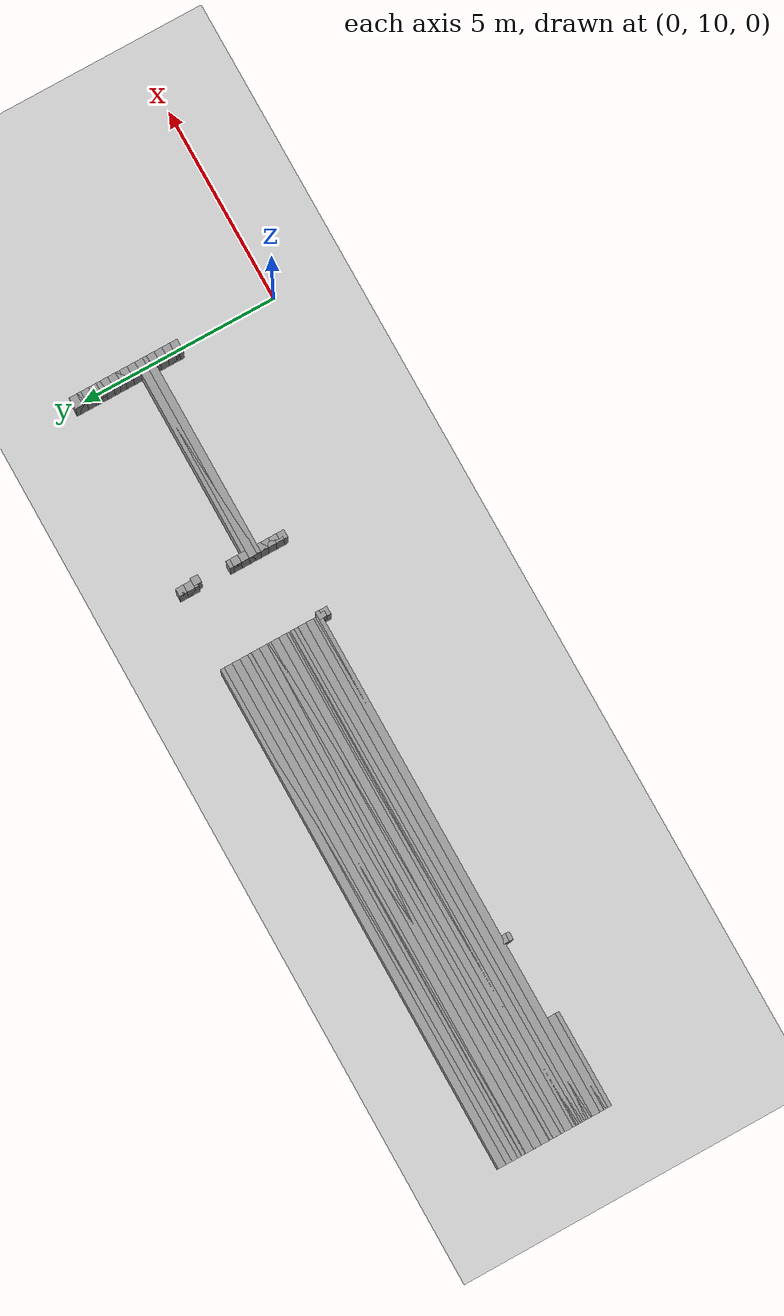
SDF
<sdf version="1.6">
 <world name="GridMap">
  <include><uri>model://sun</uri></include>
  <include><uri>model://ground_plane</uri></include>
  <model name="GridMap">
   <link name="Wall_(187.0,125.0)">
    <collision name="Wall_(187.0,125.0)_Collision">
     <geometry><box><size>2.4000000000000004 0.2 1.0</size></box></geometry>
     <pose>-18.7 12.5 0.5 0 -0 0</pose>
    </collision>
    <visual name="Wall_(187.0,125.0)_Visual">
     <geometry><box><size>2.4000000000000004 0.2 1.0</size></box></geometry>
     <pose>-18.7 12.5 0.5 0 -0 0</pose>
     <material>
      <script><uri>file://media/materials/scripts/gazebo.material</uri><name>Gazebo/Grey</name></script>
      <ambient>1 1 1 1</ambient>
     </material>
     <meta><layer>0</layer></meta>
    </visual>
    <pose>0 0 0.5 0 -0 0</pose>
   </link>
   <link name="Wall_(1.5,126.0)">
    <collision name="Wall_(1.5,126.0)_Collision">
     <geometry><box><size>0.30000000000000004 0.2 1.0</size></box></geometry>
     <pose>-0.15000000000000002 12.600000000000001 0.5 0 -0 0</pose>
    </collision>
    <visual name="Wall_(1.5,126.0)_Visual">
     <geometry><box><size>0.30000000000000004 0.2 1.0</size></box></geometry>
     <pose>-0.15000000000000002 12.600000000000001 0.5 0 -0 0</pose>
     <material>
      <script><uri>file://media/materials/scripts/gazebo.material</uri><name>Gazebo/Grey</name></script>
      <ambient>1 1 1 1</ambient>
     </material>
     <meta><layer>0</layer></meta>
    </visual>
    <pose>0 0 0.5 0 -0 0</pose>
   </link>
   <link name="Wall_(51.0,126.0)">
    <collision name="Wall_(51.0,126.0)_Collision">
     <geometry><box><size>0.2 0.2 1.0</size></box></geometry>
     <pose>-5.1000000000000005 12.600000000000001 0.5 0 -0 0</pose>
    </collision>
    <visual name="Wall_(51.0,126.0)_Visual">
     <geometry><box><size>0.2 0.2 1.0</size></box></geometry>
     <pose>-5.1000000000000005 12.600000000000001 0.5 0 -0 0</pose>
     <material>
      <script><uri>file://media/materials/scripts/gazebo.material</uri><name>Gazebo/Grey</name></script>
      <ambient>1 1 1 1</ambient>
     </material>
     <meta><layer>0</layer></meta>
    </visual>
    <pose>0 0 0.5 0 -0 0</pose>
   </link>
   <link name="Wall_(71.0,126.0)">
    <collision name="Wall_(71.0,126.0)_Collision">
     <geometry><box><size>0.2 0.2 1.0</size></box></geometry>
     <pose>-7.1000000000000005 12.600000000000001 0.5 0 -0 0</pose>
    </collision>
    <visual name="Wall_(71.0,126.0)_Visual">
     <geometry><box><size>0.2 0.2 1.0</size></box></geometry>
     <pose>-7.1000000000000005 12.600000000000001 0.5 0 -0 0</pose>
     <material>
      <script><uri>file://media/materials/scripts/gazebo.material</uri><name>Gazebo/Grey</name></script>
      <ambient>1 1 1 1</ambient>
     </material>
     <meta><layer>0</layer></meta>
    </visual>
    <pose>0 0 0.5 0 -0 0</pose>
   </link>
   <link name="Wall_(155.0,126.0)">
    <collision name="Wall_(155.0,126.0)_Collision">
     <geometry><box><size>0.2 0.2 1.0</size></box></geometry>
     <pose>-15.5 12.600000000000001 0.5 0 -0 0</pose>
    </collision>
    <visual name="Wall_(155.0,126.0)_Visual">
     <geometry><box><size>0.2 0.2 1.0</size></box></geometry>
     <pose>-15.5 12.600000000000001 0.5 0 -0 0</pose>
     <material>
      <script><uri>file://media/materials/scripts/gazebo.material</uri><name>Gazebo/Grey</name></script>
      <ambient>1 1 1 1</ambient>
     </material>
     <meta><layer>0</layer></meta>
    </visual>
    <pose>0 0 0.5 0 -0 0</pose>
   </link>
   <link name="Wall_(187.0,126.0)">
    <collision name="Wall_(187.0,126.0)_Collision">
     <geometry><box><size>2.4000000000000004 0.2 1.0</size></box></geometry>
     <pose>-18.7 12.600000000000001 0.5 0 -0 0</pose>
    </collision>
    <visual name="Wall_(187.0,126.0)_Visual">
     <geometry><box><size>2.4000000000000004 0.2 1.0</size></box></geometry>
     <pose>-18.7 12.600000000000001 0.5 0 -0 0</pose>
     <material>
      <script><uri>file://media/materials/scripts/gazebo.material</uri><name>Gazebo/Grey</name></script>
      <ambient>1 1 1 1</ambient>
     </material>
     <meta><layer>0</layer></meta>
    </visual>
    <pose>0 0 0.5 0 -0 0</pose>
   </link>
   <link name="Wall_(1.5,127.0)">
    <collision name="Wall_(1.5,127.0)_Collision">
     <geometry><box><size>0.30000000000000004 0.2 1.0</size></box></geometry>
     <pose>-0.15000000000000002 12.700000000000001 0.5 0 -0 0</pose>
    </collision>
    <visual name="Wall_(1.5,127.0)_Visual">
     <geometry><box><size>0.30000000000000004 0.2 1.0</size></box></geometry>
     <pose>-0.15000000000000002 12.700000000000001 0.5 0 -0 0</pose>
     <material>
      <script><uri>file://media/materials/scripts/gazebo.material</uri><name>Gazebo/Grey</name></script>
      <ambient>1 1 1 1</ambient>
     </material>
     <meta><layer>0</layer></meta>
    </visual>
    <pose>0 0 0.5 0 -0 0</pose>
   </link>
   <link name="Wall_(51.0,127.0)">
    <collision name="Wall_(51.0,127.0)_Collision">
     <geometry><box><size>0.2 0.2 1.0</size></box></geometry>
     <pose>-5.1000000000000005 12.700000000000001 0.5 0 -0 0</pose>
    </collision>
    <visual name="Wall_(51.0,127.0)_Visual">
     <geometry><box><size>0.2 0.2 1.0</size></box></geometry>
     <pose>-5.1000000000000005 12.700000000000001 0.5 0 -0 0</pose>
     <material>
      <script><uri>file://media/materials/scripts/gazebo.material</uri><name>Gazebo/Grey</name></script>
      <ambient>1 1 1 1</ambient>
     </material>
     <meta><layer>0</layer></meta>
    </visual>
    <pose>0 0 0.5 0 -0 0</pose>
   </link>
   <link name="Wall_(71.0,127.0)">
    <collision name="Wall_(71.0,127.0)_Collision">
     <geometry><box><size>0.2 0.2 1.0</size></box></geometry>
     <pose>-7.1000000000000005 12.700000000000001 0.5 0 -0 0</pose>
    </collision>
    <visual name="Wall_(71.0,127.0)_Visual">
     <geometry><box><size>0.2 0.2 1.0</size></box></geometry>
     <pose>-7.1000000000000005 12.700000000000001 0.5 0 -0 0</pose>
     <material>
      <script><uri>file://media/materials/scripts/gazebo.material</uri><name>Gazebo/Grey</name></script>
      <ambient>1 1 1 1</ambient>
     </material>
     <meta><layer>0</layer></meta>
    </visual>
    <pose>0 0 0.5 0 -0 0</pose>
   </link>
   <link name="Wall_(155.0,127.0)">
    <collision name="Wall_(155.0,127.0)_Collision">
     <geometry><box><size>0.2 0.2 1.0</size></box></geometry>
     <pose>-15.5 12.700000000000001 0.5 0 -0 0</pose>
    </collision>
    <visual name="Wall_(155.0,127.0)_Visual">
     <geometry><box><size>0.2 0.2 1.0</size></box></geometry>
     <pose>-15.5 12.700000000000001 0.5 0 -0 0</pose>
     <material>
      <script><uri>file://media/materials/scripts/gazebo.material</uri><name>Gazebo/Grey</name></script>
      <ambient>1 1 1 1</ambient>
     </material>
     <meta><layer>0</layer></meta>
    </visual>
    <pose>0 0 0.5 0 -0 0</pose>
   </link>
   <link name="Wall_(187.0,127.0)">
    <collision name="Wall_(187.0,127.0)_Collision">
     <geometry><box><size>2.4000000000000004 0.2 1.0</size></box></geometry>
     <pose>-18.7 12.700000000000001 0.5 0 -0 0</pose>
    </collision>
    <visual name="Wall_(187.0,127.0)_Visual">
     <geometry><box><size>2.4000000000000004 0.2 1.0</size></box></geometry>
     <pose>-18.7 12.700000000000001 0.5 0 -0 0</pose>
     <material>
      <script><uri>file://media/materials/scripts/gazebo.material</uri><name>Gazebo/Grey</name></script>
      <ambient>1 1 1 1</ambient>
     </material>
     <meta><layer>0</layer></meta>
    </visual>
    <pose>0 0 0.5 0 -0 0</pose>
   </link>
   <link name="Wall_(1.5,128.0)">
    <collision name="Wall_(1.5,128.0)_Collision">
     <geometry><box><size>0.30000000000000004 0.2 1.0</size></box></geometry>
     <pose>-0.15000000000000002 12.8 0.5 0 -0 0</pose>
    </collision>
    <visual name="Wall_(1.5,128.0)_Visual">
     <geometry><box><size>0.30000000000000004 0.2 1.0</size></box></geometry>
     <pose>-0.15000000000000002 12.8 0.5 0 -0 0</pose>
     <material>
      <script><uri>file://media/materials/scripts/gazebo.material</uri><name>Gazebo/Grey</name></script>
      <ambient>1 1 1 1</ambient>
     </material>
     <meta><layer>0</layer></meta>
    </visual>
    <pose>0 0 0.5 0 -0 0</pose>
   </link>
   <link name="Wall_(51.0,128.0)">
    <collision name="Wall_(51.0,128.0)_Collision">
     <geometry><box><size>0.2 0.2 1.0</size></box></geometry>
     <pose>-5.1000000000000005 12.8 0.5 0 -0 0</pose>
    </collision>
    <visual name="Wall_(51.0,128.0)_Visual">
     <geometry><box><size>0.2 0.2 1.0</size></box></geometry>
     <pose>-5.1000000000000005 12.8 0.5 0 -0 0</pose>
     <material>
      <script><uri>file://media/materials/scripts/gazebo.material</uri><name>Gazebo/Grey</name></script>
      <ambient>1 1 1 1</ambient>
     </material>
     <meta><layer>0</layer></meta>
    </visual>
    <pose>0 0 0.5 0 -0 0</pose>
   </link>
   <link name="Wall_(135.0,128.0)">
    <collision name="Wall_(135.0,128.0)_Collision">
     <geometry><box><size>12.8 0.2 1.0</size></box></geometry>
     <pose>-13.5 12.8 0.5 0 -0 0</pose>
    </collision>
    <visual name="Wall_(135.0,128.0)_Visual">
     <geometry><box><size>12.8 0.2 1.0</size></box></geometry>
     <pose>-13.5 12.8 0.5 0 -0 0</pose>
     <material>
      <script><uri>file://media/materials/scripts/gazebo.material</uri><name>Gazebo/Grey</name></script>
      <ambient>1 1 1 1</ambient>
     </material>
     <meta><layer>0</layer></meta>
    </visual>
    <pose>0 0 0.5 0 -0 0</pose>
   </link>
   <link name="Wall_(1.5,129.0)">
    <collision name="Wall_(1.5,129.0)_Collision">
     <geometry><box><size>0.30000000000000004 0.2 1.0</size></box></geometry>
     <pose>-0.15000000000000002 12.9 0.5 0 -0 0</pose>
    </collision>
    <visual name="Wall_(1.5,129.0)_Visual">
     <geometry><box><size>0.30000000000000004 0.2 1.0</size></box></geometry>
     <pose>-0.15000000000000002 12.9 0.5 0 -0 0</pose>
     <material>
      <script><uri>file://media/materials/scripts/gazebo.material</uri><name>Gazebo/Grey</name></script>
      <ambient>1 1 1 1</ambient>
     </material>
     <meta><layer>0</layer></meta>
    </visual>
    <pose>0 0 0.5 0 -0 0</pose>
   </link>
   <link name="Wall_(51.0,129.0)">
    <collision name="Wall_(51.0,129.0)_Collision">
     <geometry><box><size>0.2 0.2 1.0</size></box></geometry>
     <pose>-5.1000000000000005 12.9 0.5 0 -0 0</pose>
    </collision>
    <visual name="Wall_(51.0,129.0)_Visual">
     <geometry><box><size>0.2 0.2 1.0</size></box></geometry>
     <pose>-5.1000000000000005 12.9 0.5 0 -0 0</pose>
     <material>
      <script><uri>file://media/materials/scripts/gazebo.material</uri><name>Gazebo/Grey</name></script>
      <ambient>1 1 1 1</ambient>
     </material>
     <meta><layer>0</layer></meta>
    </visual>
    <pose>0 0 0.5 0 -0 0</pose>
   </link>
   <link name="Wall_(135.0,129.0)">
    <collision name="Wall_(135.0,129.0)_Collision">
     <geometry><box><size>12.8 0.2 1.0</size></box></geometry>
     <pose>-13.5 12.9 0.5 0 -0 0</pose>
    </collision>
    <visual name="Wall_(135.0,129.0)_Visual">
     <geometry><box><size>12.8 0.2 1.0</size></box></geometry>
     <pose>-13.5 12.9 0.5 0 -0 0</pose>
     <material>
      <script><uri>file://media/materials/scripts/gazebo.material</uri><name>Gazebo/Grey</name></script>
      <ambient>1 1 1 1</ambient>
     </material>
     <meta><layer>0</layer></meta>
    </visual>
    <pose>0 0 0.5 0 -0 0</pose>
   </link>
   <link name="Wall_(1.5,130.0)">
    <collision name="Wall_(1.5,130.0)_Collision">
     <geometry><box><size>0.30000000000000004 0.2 1.0</size></box></geometry>
     <pose>-0.15000000000000002 13.0 0.5 0 -0 0</pose>
    </collision>
    <visual name="Wall_(1.5,130.0)_Visual">
     <geometry><box><size>0.30000000000000004 0.2 1.0</size></box></geometry>
     <pose>-0.15000000000000002 13.0 0.5 0 -0 0</pose>
     <material>
      <script><uri>file://media/materials/scripts/gazebo.material</uri><name>Gazebo/Grey</name></script>
      <ambient>1 1 1 1</ambient>
     </material>
     <meta><layer>0</layer></meta>
    </visual>
    <pose>0 0 0.5 0 -0 0</pose>
   </link>
   <link name="Wall_(51.0,130.0)">
    <collision name="Wall_(51.0,130.0)_Collision">
     <geometry><box><size>0.2 0.2 1.0</size></box></geometry>
     <pose>-5.1000000000000005 13.0 0.5 0 -0 0</pose>
    </collision>
    <visual name="Wall_(51.0,130.0)_Visual">
     <geometry><box><size>0.2 0.2 1.0</size></box></geometry>
     <pose>-5.1000000000000005 13.0 0.5 0 -0 0</pose>
     <material>
      <script><uri>file://media/materials/scripts/gazebo.material</uri><name>Gazebo/Grey</name></script>
      <ambient>1 1 1 1</ambient>
     </material>
     <meta><layer>0</layer></meta>
    </visual>
    <pose>0 0 0.5 0 -0 0</pose>
   </link>
   <link name="Wall_(135.0,130.0)">
    <collision name="Wall_(135.0,130.0)_Collision">
     <geometry><box><size>12.8 0.2 1.0</size></box></geometry>
     <pose>-13.5 13.0 0.5 0 -0 0</pose>
    </collision>
    <visual name="Wall_(135.0,130.0)_Visual">
     <geometry><box><size>12.8 0.2 1.0</size></box></geometry>
     <pose>-13.5 13.0 0.5 0 -0 0</pose>
     <material>
      <script><uri>file://media/materials/scripts/gazebo.material</uri><name>Gazebo/Grey</name></script>
      <ambient>1 1 1 1</ambient>
     </material>
     <meta><layer>0</layer></meta>
    </visual>
    <pose>0 0 0.5 0 -0 0</pose>
   </link>
   <link name="Wall_(1.5,131.0)">
    <collision name="Wall_(1.5,131.0)_Collision">
     <geometry><box><size>0.30000000000000004 0.2 1.0</size></box></geometry>
     <pose>-0.15000000000000002 13.100000000000001 0.5 0 -0 0</pose>
    </collision>
    <visual name="Wall_(1.5,131.0)_Visual">
     <geometry><box><size>0.30000000000000004 0.2 1.0</size></box></geometry>
     <pose>-0.15000000000000002 13.100000000000001 0.5 0 -0 0</pose>
     <material>
      <script><uri>file://media/materials/scripts/gazebo.material</uri><name>Gazebo/Grey</name></script>
      <ambient>1 1 1 1</ambient>
     </material>
     <meta><layer>0</layer></meta>
    </visual>
    <pose>0 0 0.5 0 -0 0</pose>
   </link>
   <link name="Wall_(51.0,131.0)">
    <collision name="Wall_(51.0,131.0)_Collision">
     <geometry><box><size>0.2 0.2 1.0</size></box></geometry>
     <pose>-5.1000000000000005 13.100000000000001 0.5 0 -0 0</pose>
    </collision>
    <visual name="Wall_(51.0,131.0)_Visual">
     <geometry><box><size>0.2 0.2 1.0</size></box></geometry>
     <pose>-5.1000000000000005 13.100000000000001 0.5 0 -0 0</pose>
     <material>
      <script><uri>file://media/materials/scripts/gazebo.material</uri><name>Gazebo/Grey</name></script>
      <ambient>1 1 1 1</ambient>
     </material>
     <meta><layer>0</layer></meta>
    </visual>
    <pose>0 0 0.5 0 -0 0</pose>
   </link>
   <link name="Wall_(135.0,131.0)">
    <collision name="Wall_(135.0,131.0)_Collision">
     <geometry><box><size>12.8 0.2 1.0</size></box></geometry>
     <pose>-13.5 13.100000000000001 0.5 0 -0 0</pose>
    </collision>
    <visual name="Wall_(135.0,131.0)_Visual">
     <geometry><box><size>12.8 0.2 1.0</size></box></geometry>
     <pose>-13.5 13.100000000000001 0.5 0 -0 0</pose>
     <material>
      <script><uri>file://media/materials/scripts/gazebo.material</uri><name>Gazebo/Grey</name></script>
      <ambient>1 1 1 1</ambient>
     </material>
     <meta><layer>0</layer></meta>
    </visual>
    <pose>0 0 0.5 0 -0 0</pose>
   </link>
   <link name="Wall_(1.5,132.0)">
    <collision name="Wall_(1.5,132.0)_Collision">
     <geometry><box><size>0.30000000000000004 0.2 1.0</size></box></geometry>
     <pose>-0.15000000000000002 13.200000000000001 0.5 0 -0 0</pose>
    </collision>
    <visual name="Wall_(1.5,132.0)_Visual">
     <geometry><box><size>0.30000000000000004 0.2 1.0</size></box></geometry>
     <pose>-0.15000000000000002 13.200000000000001 0.5 0 -0 0</pose>
     <material>
      <script><uri>file://media/materials/scripts/gazebo.material</uri><name>Gazebo/Grey</name></script>
      <ambient>1 1 1 1</ambient>
     </material>
     <meta><layer>0</layer></meta>
    </visual>
    <pose>0 0 0.5 0 -0 0</pose>
   </link>
   <link name="Wall_(51.0,132.0)">
    <collision name="Wall_(51.0,132.0)_Collision">
     <geometry><box><size>0.2 0.2 1.0</size></box></geometry>
     <pose>-5.1000000000000005 13.200000000000001 0.5 0 -0 0</pose>
    </collision>
    <visual name="Wall_(51.0,132.0)_Visual">
     <geometry><box><size>0.2 0.2 1.0</size></box></geometry>
     <pose>-5.1000000000000005 13.200000000000001 0.5 0 -0 0</pose>
     <material>
      <script><uri>file://media/materials/scripts/gazebo.material</uri><name>Gazebo/Grey</name></script>
      <ambient>1 1 1 1</ambient>
     </material>
     <meta><layer>0</layer></meta>
    </visual>
    <pose>0 0 0.5 0 -0 0</pose>
   </link>
   <link name="Wall_(135.0,132.0)">
    <collision name="Wall_(135.0,132.0)_Collision">
     <geometry><box><size>12.8 0.2 1.0</size></box></geometry>
     <pose>-13.5 13.200000000000001 0.5 0 -0 0</pose>
    </collision>
    <visual name="Wall_(135.0,132.0)_Visual">
     <geometry><box><size>12.8 0.2 1.0</size></box></geometry>
     <pose>-13.5 13.200000000000001 0.5 0 -0 0</pose>
     <material>
      <script><uri>file://media/materials/scripts/gazebo.material</uri><name>Gazebo/Grey</name></script>
      <ambient>1 1 1 1</ambient>
     </material>
     <meta><layer>0</layer></meta>
    </visual>
    <pose>0 0 0.5 0 -0 0</pose>
   </link>
   <link name="Wall_(26.0,133.0)">
    <collision name="Wall_(26.0,133.0)_Collision">
     <geometry><box><size>5.2 0.2 1.0</size></box></geometry>
     <pose>-2.6 13.3 0.5 0 -0 0</pose>
    </collision>
    <visual name="Wall_(26.0,133.0)_Visual">
     <geometry><box><size>5.2 0.2 1.0</size></box></geometry>
     <pose>-2.6 13.3 0.5 0 -0 0</pose>
     <material>
      <script><uri>file://media/materials/scripts/gazebo.material</uri><name>Gazebo/Grey</name></script>
      <ambient>1 1 1 1</ambient>
     </material>
     <meta><layer>0</layer></meta>
    </visual>
    <pose>0 0 0.5 0 -0 0</pose>
   </link>
   <link name="Wall_(135.0,133.0)">
    <collision name="Wall_(135.0,133.0)_Collision">
     <geometry><box><size>12.8 0.2 1.0</size></box></geometry>
     <pose>-13.5 13.3 0.5 0 -0 0</pose>
    </collision>
    <visual name="Wall_(135.0,133.0)_Visual">
     <geometry><box><size>12.8 0.2 1.0</size></box></geometry>
     <pose>-13.5 13.3 0.5 0 -0 0</pose>
     <material>
      <script><uri>file://media/materials/scripts/gazebo.material</uri><name>Gazebo/Grey</name></script>
      <ambient>1 1 1 1</ambient>
     </material>
     <meta><layer>0</layer></meta>
    </visual>
    <pose>0 0 0.5 0 -0 0</pose>
   </link>
   <link name="Wall_(26.0,134.0)">
    <collision name="Wall_(26.0,134.0)_Collision">
     <geometry><box><size>5.2 0.2 1.0</size></box></geometry>
     <pose>-2.6 13.4 0.5 0 -0 0</pose>
    </collision>
    <visual name="Wall_(26.0,134.0)_Visual">
     <geometry><box><size>5.2 0.2 1.0</size></box></geometry>
     <pose>-2.6 13.4 0.5 0 -0 0</pose>
     <material>
      <script><uri>file://media/materials/scripts/gazebo.material</uri><name>Gazebo/Grey</name></script>
      <ambient>1 1 1 1</ambient>
     </material>
     <meta><layer>0</layer></meta>
    </visual>
    <pose>0 0 0.5 0 -0 0</pose>
   </link>
   <link name="Wall_(135.0,134.0)">
    <collision name="Wall_(135.0,134.0)_Collision">
     <geometry><box><size>12.8 0.2 1.0</size></box></geometry>
     <pose>-13.5 13.4 0.5 0 -0 0</pose>
    </collision>
    <visual name="Wall_(135.0,134.0)_Visual">
     <geometry><box><size>12.8 0.2 1.0</size></box></geometry>
     <pose>-13.5 13.4 0.5 0 -0 0</pose>
     <material>
      <script><uri>file://media/materials/scripts/gazebo.material</uri><name>Gazebo/Grey</name></script>
      <ambient>1 1 1 1</ambient>
     </material>
     <meta><layer>0</layer></meta>
    </visual>
    <pose>0 0 0.5 0 -0 0</pose>
   </link>
   <link name="Wall_(26.0,135.0)">
    <collision name="Wall_(26.0,135.0)_Collision">
     <geometry><box><size>5.2 0.2 1.0</size></box></geometry>
     <pose>-2.6 13.5 0.5 0 -0 0</pose>
    </collision>
    <visual name="Wall_(26.0,135.0)_Visual">
     <geometry><box><size>5.2 0.2 1.0</size></box></geometry>
     <pose>-2.6 13.5 0.5 0 -0 0</pose>
     <material>
      <script><uri>file://media/materials/scripts/gazebo.material</uri><name>Gazebo/Grey</name></script>
      <ambient>1 1 1 1</ambient>
     </material>
     <meta><layer>0</layer></meta>
    </visual>
    <pose>0 0 0.5 0 -0 0</pose>
   </link>
   <link name="Wall_(135.0,135.0)">
    <collision name="Wall_(135.0,135.0)_Collision">
     <geometry><box><size>12.8 0.2 1.0</size></box></geometry>
     <pose>-13.5 13.5 0.5 0 -0 0</pose>
    </collision>
    <visual name="Wall_(135.0,135.0)_Visual">
     <geometry><box><size>12.8 0.2 1.0</size></box></geometry>
     <pose>-13.5 13.5 0.5 0 -0 0</pose>
     <material>
      <script><uri>file://media/materials/scripts/gazebo.material</uri><name>Gazebo/Grey</name></script>
      <ambient>1 1 1 1</ambient>
     </material>
     <meta><layer>0</layer></meta>
    </visual>
    <pose>0 0 0.5 0 -0 0</pose>
   </link>
   <link name="Wall_(1.5,136.0)">
    <collision name="Wall_(1.5,136.0)_Collision">
     <geometry><box><size>0.30000000000000004 0.2 1.0</size></box></geometry>
     <pose>-0.15000000000000002 13.600000000000001 0.5 0 -0 0</pose>
    </collision>
    <visual name="Wall_(1.5,136.0)_Visual">
     <geometry><box><size>0.30000000000000004 0.2 1.0</size></box></geometry>
     <pose>-0.15000000000000002 13.600000000000001 0.5 0 -0 0</pose>
     <material>
      <script><uri>file://media/materials/scripts/gazebo.material</uri><name>Gazebo/Grey</name></script>
      <ambient>1 1 1 1</ambient>
     </material>
     <meta><layer>0</layer></meta>
    </visual>
    <pose>0 0 0.5 0 -0 0</pose>
   </link>
   <link name="Wall_(51.0,136.0)">
    <collision name="Wall_(51.0,136.0)_Collision">
     <geometry><box><size>0.2 0.2 1.0</size></box></geometry>
     <pose>-5.1000000000000005 13.600000000000001 0.5 0 -0 0</pose>
    </collision>
    <visual name="Wall_(51.0,136.0)_Visual">
     <geometry><box><size>0.2 0.2 1.0</size></box></geometry>
     <pose>-5.1000000000000005 13.600000000000001 0.5 0 -0 0</pose>
     <material>
      <script><uri>file://media/materials/scripts/gazebo.material</uri><name>Gazebo/Grey</name></script>
      <ambient>1 1 1 1</ambient>
     </material>
     <meta><layer>0</layer></meta>
    </visual>
    <pose>0 0 0.5 0 -0 0</pose>
   </link>
   <link name="Wall_(135.0,136.0)">
    <collision name="Wall_(135.0,136.0)_Collision">
     <geometry><box><size>12.8 0.2 1.0</size></box></geometry>
     <pose>-13.5 13.600000000000001 0.5 0 -0 0</pose>
    </collision>
    <visual name="Wall_(135.0,136.0)_Visual">
     <geometry><box><size>12.8 0.2 1.0</size></box></geometry>
     <pose>-13.5 13.600000000000001 0.5 0 -0 0</pose>
     <material>
      <script><uri>file://media/materials/scripts/gazebo.material</uri><name>Gazebo/Grey</name></script>
      <ambient>1 1 1 1</ambient>
     </material>
     <meta><layer>0</layer></meta>
    </visual>
    <pose>0 0 0.5 0 -0 0</pose>
   </link>
   <link name="Wall_(1.5,137.0)">
    <collision name="Wall_(1.5,137.0)_Collision">
     <geometry><box><size>0.30000000000000004 0.2 1.0</size></box></geometry>
     <pose>-0.15000000000000002 13.700000000000001 0.5 0 -0 0</pose>
    </collision>
    <visual name="Wall_(1.5,137.0)_Visual">
     <geometry><box><size>0.30000000000000004 0.2 1.0</size></box></geometry>
     <pose>-0.15000000000000002 13.700000000000001 0.5 0 -0 0</pose>
     <material>
      <script><uri>file://media/materials/scripts/gazebo.material</uri><name>Gazebo/Grey</name></script>
      <ambient>1 1 1 1</ambient>
     </material>
     <meta><layer>0</layer></meta>
    </visual>
    <pose>0 0 0.5 0 -0 0</pose>
   </link>
   <link name="Wall_(51.0,137.0)">
    <collision name="Wall_(51.0,137.0)_Collision">
     <geometry><box><size>0.2 0.2 1.0</size></box></geometry>
     <pose>-5.1000000000000005 13.700000000000001 0.5 0 -0 0</pose>
    </collision>
    <visual name="Wall_(51.0,137.0)_Visual">
     <geometry><box><size>0.2 0.2 1.0</size></box></geometry>
     <pose>-5.1000000000000005 13.700000000000001 0.5 0 -0 0</pose>
     <material>
      <script><uri>file://media/materials/scripts/gazebo.material</uri><name>Gazebo/Grey</name></script>
      <ambient>1 1 1 1</ambient>
     </material>
     <meta><layer>0</layer></meta>
    </visual>
    <pose>0 0 0.5 0 -0 0</pose>
   </link>
   <link name="Wall_(135.0,137.0)">
    <collision name="Wall_(135.0,137.0)_Collision">
     <geometry><box><size>12.8 0.2 1.0</size></box></geometry>
     <pose>-13.5 13.700000000000001 0.5 0 -0 0</pose>
    </collision>
    <visual name="Wall_(135.0,137.0)_Visual">
     <geometry><box><size>12.8 0.2 1.0</size></box></geometry>
     <pose>-13.5 13.700000000000001 0.5 0 -0 0</pose>
     <material>
      <script><uri>file://media/materials/scripts/gazebo.material</uri><name>Gazebo/Grey</name></script>
      <ambient>1 1 1 1</ambient>
     </material>
     <meta><layer>0</layer></meta>
    </visual>
    <pose>0 0 0.5 0 -0 0</pose>
   </link>
   <link name="Wall_(1.5,138.0)">
    <collision name="Wall_(1.5,138.0)_Collision">
     <geometry><box><size>0.30000000000000004 0.2 1.0</size></box></geometry>
     <pose>-0.15000000000000002 13.8 0.5 0 -0 0</pose>
    </collision>
    <visual name="Wall_(1.5,138.0)_Visual">
     <geometry><box><size>0.30000000000000004 0.2 1.0</size></box></geometry>
     <pose>-0.15000000000000002 13.8 0.5 0 -0 0</pose>
     <material>
      <script><uri>file://media/materials/scripts/gazebo.material</uri><name>Gazebo/Grey</name></script>
      <ambient>1 1 1 1</ambient>
     </material>
     <meta><layer>0</layer></meta>
    </visual>
    <pose>0 0 0.5 0 -0 0</pose>
   </link>
   <link name="Wall_(51.0,138.0)">
    <collision name="Wall_(51.0,138.0)_Collision">
     <geometry><box><size>0.2 0.2 1.0</size></box></geometry>
     <pose>-5.1000000000000005 13.8 0.5 0 -0 0</pose>
    </collision>
    <visual name="Wall_(51.0,138.0)_Visual">
     <geometry><box><size>0.2 0.2 1.0</size></box></geometry>
     <pose>-5.1000000000000005 13.8 0.5 0 -0 0</pose>
     <material>
      <script><uri>file://media/materials/scripts/gazebo.material</uri><name>Gazebo/Grey</name></script>
      <ambient>1 1 1 1</ambient>
     </material>
     <meta><layer>0</layer></meta>
    </visual>
    <pose>0 0 0.5 0 -0 0</pose>
   </link>
   <link name="Wall_(135.0,138.0)">
    <collision name="Wall_(135.0,138.0)_Collision">
     <geometry><box><size>12.8 0.2 1.0</size></box></geometry>
     <pose>-13.5 13.8 0.5 0 -0 0</pose>
    </collision>
    <visual name="Wall_(135.0,138.0)_Visual">
     <geometry><box><size>12.8 0.2 1.0</size></box></geometry>
     <pose>-13.5 13.8 0.5 0 -0 0</pose>
     <material>
      <script><uri>file://media/materials/scripts/gazebo.material</uri><name>Gazebo/Grey</name></script>
      <ambient>1 1 1 1</ambient>
     </material>
     <meta><layer>0</layer></meta>
    </visual>
    <pose>0 0 0.5 0 -0 0</pose>
   </link>
   <link name="Wall_(1.5,139.0)">
    <collision name="Wall_(1.5,139.0)_Collision">
     <geometry><box><size>0.30000000000000004 0.2 1.0</size></box></geometry>
     <pose>-0.15000000000000002 13.9 0.5 0 -0 0</pose>
    </collision>
    <visual name="Wall_(1.5,139.0)_Visual">
     <geometry><box><size>0.30000000000000004 0.2 1.0</size></box></geometry>
     <pose>-0.15000000000000002 13.9 0.5 0 -0 0</pose>
     <material>
      <script><uri>file://media/materials/scripts/gazebo.material</uri><name>Gazebo/Grey</name></script>
      <ambient>1 1 1 1</ambient>
     </material>
     <meta><layer>0</layer></meta>
    </visual>
    <pose>0 0 0.5 0 -0 0</pose>
   </link>
   <link name="Wall_(51.0,139.0)">
    <collision name="Wall_(51.0,139.0)_Collision">
     <geometry><box><size>0.2 0.2 1.0</size></box></geometry>
     <pose>-5.1000000000000005 13.9 0.5 0 -0 0</pose>
    </collision>
    <visual name="Wall_(51.0,139.0)_Visual">
     <geometry><box><size>0.2 0.2 1.0</size></box></geometry>
     <pose>-5.1000000000000005 13.9 0.5 0 -0 0</pose>
     <material>
      <script><uri>file://media/materials/scripts/gazebo.material</uri><name>Gazebo/Grey</name></script>
      <ambient>1 1 1 1</ambient>
     </material>
     <meta><layer>0</layer></meta>
    </visual>
    <pose>0 0 0.5 0 -0 0</pose>
   </link>
   <link name="Wall_(135.0,139.0)">
    <collision name="Wall_(135.0,139.0)_Collision">
     <geometry><box><size>12.8 0.2 1.0</size></box></geometry>
     <pose>-13.5 13.9 0.5 0 -0 0</pose>
    </collision>
    <visual name="Wall_(135.0,139.0)_Visual">
     <geometry><box><size>12.8 0.2 1.0</size></box></geometry>
     <pose>-13.5 13.9 0.5 0 -0 0</pose>
     <material>
      <script><uri>file://media/materials/scripts/gazebo.material</uri><name>Gazebo/Grey</name></script>
      <ambient>1 1 1 1</ambient>
     </material>
     <meta><layer>0</layer></meta>
    </visual>
    <pose>0 0 0.5 0 -0 0</pose>
   </link>
   <link name="Wall_(1.5,140.0)">
    <collision name="Wall_(1.5,140.0)_Collision">
     <geometry><box><size>0.30000000000000004 0.2 1.0</size></box></geometry>
     <pose>-0.15000000000000002 14.0 0.5 0 -0 0</pose>
    </collision>
    <visual name="Wall_(1.5,140.0)_Visual">
     <geometry><box><size>0.30000000000000004 0.2 1.0</size></box></geometry>
     <pose>-0.15000000000000002 14.0 0.5 0 -0 0</pose>
     <material>
      <script><uri>file://media/materials/scripts/gazebo.material</uri><name>Gazebo/Grey</name></script>
      <ambient>1 1 1 1</ambient>
     </material>
     <meta><layer>0</layer></meta>
    </visual>
    <pose>0 0 0.5 0 -0 0</pose>
   </link>
   <link name="Wall_(135.0,140.0)">
    <collision name="Wall_(135.0,140.0)_Collision">
     <geometry><box><size>12.8 0.2 1.0</size></box></geometry>
     <pose>-13.5 14.0 0.5 0 -0 0</pose>
    </collision>
    <visual name="Wall_(135.0,140.0)_Visual">
     <geometry><box><size>12.8 0.2 1.0</size></box></geometry>
     <pose>-13.5 14.0 0.5 0 -0 0</pose>
     <material>
      <script><uri>file://media/materials/scripts/gazebo.material</uri><name>Gazebo/Grey</name></script>
      <ambient>1 1 1 1</ambient>
     </material>
     <meta><layer>0</layer></meta>
    </visual>
    <pose>0 0 0.5 0 -0 0</pose>
   </link>
   <link name="Wall_(1.5,141.0)">
    <collision name="Wall_(1.5,141.0)_Collision">
     <geometry><box><size>0.30000000000000004 0.2 1.0</size></box></geometry>
     <pose>-0.15000000000000002 14.100000000000001 0.5 0 -0 0</pose>
    </collision>
    <visual name="Wall_(1.5,141.0)_Visual">
     <geometry><box><size>0.30000000000000004 0.2 1.0</size></box></geometry>
     <pose>-0.15000000000000002 14.100000000000001 0.5 0 -0 0</pose>
     <material>
      <script><uri>file://media/materials/scripts/gazebo.material</uri><name>Gazebo/Grey</name></script>
      <ambient>1 1 1 1</ambient>
     </material>
     <meta><layer>0</layer></meta>
    </visual>
    <pose>0 0 0.5 0 -0 0</pose>
   </link>
   <link name="Wall_(135.0,141.0)">
    <collision name="Wall_(135.0,141.0)_Collision">
     <geometry><box><size>12.8 0.2 1.0</size></box></geometry>
     <pose>-13.5 14.100000000000001 0.5 0 -0 0</pose>
    </collision>
    <visual name="Wall_(135.0,141.0)_Visual">
     <geometry><box><size>12.8 0.2 1.0</size></box></geometry>
     <pose>-13.5 14.100000000000001 0.5 0 -0 0</pose>
     <material>
      <script><uri>file://media/materials/scripts/gazebo.material</uri><name>Gazebo/Grey</name></script>
      <ambient>1 1 1 1</ambient>
     </material>
     <meta><layer>0</layer></meta>
    </visual>
    <pose>0 0 0.5 0 -0 0</pose>
   </link>
   <link name="Wall_(1.5,142.0)">
    <collision name="Wall_(1.5,142.0)_Collision">
     <geometry><box><size>0.30000000000000004 0.2 1.0</size></box></geometry>
     <pose>-0.15000000000000002 14.200000000000001 0.5 0 -0 0</pose>
    </collision>
    <visual name="Wall_(1.5,142.0)_Visual">
     <geometry><box><size>0.30000000000000004 0.2 1.0</size></box></geometry>
     <pose>-0.15000000000000002 14.200000000000001 0.5 0 -0 0</pose>
     <material>
      <script><uri>file://media/materials/scripts/gazebo.material</uri><name>Gazebo/Grey</name></script>
      <ambient>1 1 1 1</ambient>
     </material>
     <meta><layer>0</layer></meta>
    </visual>
    <pose>0 0 0.5 0 -0 0</pose>
   </link>
   <link name="Wall_(135.0,142.0)">
    <collision name="Wall_(135.0,142.0)_Collision">
     <geometry><box><size>12.8 0.2 1.0</size></box></geometry>
     <pose>-13.5 14.200000000000001 0.5 0 -0 0</pose>
    </collision>
    <visual name="Wall_(135.0,142.0)_Visual">
     <geometry><box><size>12.8 0.2 1.0</size></box></geometry>
     <pose>-13.5 14.200000000000001 0.5 0 -0 0</pose>
     <material>
      <script><uri>file://media/materials/scripts/gazebo.material</uri><name>Gazebo/Grey</name></script>
      <ambient>1 1 1 1</ambient>
     </material>
     <meta><layer>0</layer></meta>
    </visual>
    <pose>0 0 0.5 0 -0 0</pose>
   </link>
   <link name="Wall_(1.5,143.0)">
    <collision name="Wall_(1.5,143.0)_Collision">
     <geometry><box><size>0.30000000000000004 0.2 1.0</size></box></geometry>
     <pose>-0.15000000000000002 14.3 0.5 0 -0 0</pose>
    </collision>
    <visual name="Wall_(1.5,143.0)_Visual">
     <geometry><box><size>0.30000000000000004 0.2 1.0</size></box></geometry>
     <pose>-0.15000000000000002 14.3 0.5 0 -0 0</pose>
     <material>
      <script><uri>file://media/materials/scripts/gazebo.material</uri><name>Gazebo/Grey</name></script>
      <ambient>1 1 1 1</ambient>
     </material>
     <meta><layer>0</layer></meta>
    </visual>
    <pose>0 0 0.5 0 -0 0</pose>
   </link>
   <link name="Wall_(135.0,143.0)">
    <collision name="Wall_(135.0,143.0)_Collision">
     <geometry><box><size>12.8 0.2 1.0</size></box></geometry>
     <pose>-13.5 14.3 0.5 0 -0 0</pose>
    </collision>
    <visual name="Wall_(135.0,143.0)_Visual">
     <geometry><box><size>12.8 0.2 1.0</size></box></geometry>
     <pose>-13.5 14.3 0.5 0 -0 0</pose>
     <material>
      <script><uri>file://media/materials/scripts/gazebo.material</uri><name>Gazebo/Grey</name></script>
      <ambient>1 1 1 1</ambient>
     </material>
     <meta><layer>0</layer></meta>
    </visual>
    <pose>0 0 0.5 0 -0 0</pose>
   </link>
   <link name="Wall_(1.5,144.0)">
    <collision name="Wall_(1.5,144.0)_Collision">
     <geometry><box><size>0.30000000000000004 0.2 1.0</size></box></geometry>
     <pose>-0.15000000000000002 14.4 0.5 0 -0 0</pose>
    </collision>
    <visual name="Wall_(1.5,144.0)_Visual">
     <geometry><box><size>0.30000000000000004 0.2 1.0</size></box></geometry>
     <pose>-0.15000000000000002 14.4 0.5 0 -0 0</pose>
     <material>
      <script><uri>file://media/materials/scripts/gazebo.material</uri><name>Gazebo/Grey</name></script>
      <ambient>1 1 1 1</ambient>
     </material>
     <meta><layer>0</layer></meta>
    </visual>
    <pose>0 0 0.5 0 -0 0</pose>
   </link>
   <link name="Wall_(135.0,144.0)">
    <collision name="Wall_(135.0,144.0)_Collision">
     <geometry><box><size>12.8 0.2 1.0</size></box></geometry>
     <pose>-13.5 14.4 0.5 0 -0 0</pose>
    </collision>
    <visual name="Wall_(135.0,144.0)_Visual">
     <geometry><box><size>12.8 0.2 1.0</size></box></geometry>
     <pose>-13.5 14.4 0.5 0 -0 0</pose>
     <material>
      <script><uri>file://media/materials/scripts/gazebo.material</uri><name>Gazebo/Grey</name></script>
      <ambient>1 1 1 1</ambient>
     </material>
     <meta><layer>0</layer></meta>
    </visual>
    <pose>0 0 0.5 0 -0 0</pose>
   </link>
   <link name="Wall_(1.5,145.0)">
    <collision name="Wall_(1.5,145.0)_Collision">
     <geometry><box><size>0.30000000000000004 0.2 1.0</size></box></geometry>
     <pose>-0.15000000000000002 14.5 0.5 0 -0 0</pose>
    </collision>
    <visual name="Wall_(1.5,145.0)_Visual">
     <geometry><box><size>0.30000000000000004 0.2 1.0</size></box></geometry>
     <pose>-0.15000000000000002 14.5 0.5 0 -0 0</pose>
     <material>
      <script><uri>file://media/materials/scripts/gazebo.material</uri><name>Gazebo/Grey</name></script>
      <ambient>1 1 1 1</ambient>
     </material>
     <meta><layer>0</layer></meta>
    </visual>
    <pose>0 0 0.5 0 -0 0</pose>
   </link>
   <link name="Wall_(135.0,145.0)">
    <collision name="Wall_(135.0,145.0)_Collision">
     <geometry><box><size>12.8 0.2 1.0</size></box></geometry>
     <pose>-13.5 14.5 0.5 0 -0 0</pose>
    </collision>
    <visual name="Wall_(135.0,145.0)_Visual">
     <geometry><box><size>12.8 0.2 1.0</size></box></geometry>
     <pose>-13.5 14.5 0.5 0 -0 0</pose>
     <material>
      <script><uri>file://media/materials/scripts/gazebo.material</uri><name>Gazebo/Grey</name></script>
      <ambient>1 1 1 1</ambient>
     </material>
     <meta><layer>0</layer></meta>
    </visual>
    <pose>0 0 0.5 0 -0 0</pose>
   </link>
   <link name="Wall_(1.5,146.0)">
    <collision name="Wall_(1.5,146.0)_Collision">
     <geometry><box><size>0.30000000000000004 0.2 1.0</size></box></geometry>
     <pose>-0.15000000000000002 14.600000000000001 0.5 0 -0 0</pose>
    </collision>
    <visual name="Wall_(1.5,146.0)_Visual">
     <geometry><box><size>0.30000000000000004 0.2 1.0</size></box></geometry>
     <pose>-0.15000000000000002 14.600000000000001 0.5 0 -0 0</pose>
     <material>
      <script><uri>file://media/materials/scripts/gazebo.material</uri><name>Gazebo/Grey</name></script>
      <ambient>1 1 1 1</ambient>
     </material>
     <meta><layer>0</layer></meta>
    </visual>
    <pose>0 0 0.5 0 -0 0</pose>
   </link>
   <link name="Wall_(135.0,146.0)">
    <collision name="Wall_(135.0,146.0)_Collision">
     <geometry><box><size>12.8 0.2 1.0</size></box></geometry>
     <pose>-13.5 14.600000000000001 0.5 0 -0 0</pose>
    </collision>
    <visual name="Wall_(135.0,146.0)_Visual">
     <geometry><box><size>12.8 0.2 1.0</size></box></geometry>
     <pose>-13.5 14.600000000000001 0.5 0 -0 0</pose>
     <material>
      <script><uri>file://media/materials/scripts/gazebo.material</uri><name>Gazebo/Grey</name></script>
      <ambient>1 1 1 1</ambient>
     </material>
     <meta><layer>0</layer></meta>
    </visual>
    <pose>0 0 0.5 0 -0 0</pose>
   </link>
   <link name="Wall_(1.5,147.0)">
    <collision name="Wall_(1.5,147.0)_Collision">
     <geometry><box><size>0.30000000000000004 0.2 1.0</size></box></geometry>
     <pose>-0.15000000000000002 14.700000000000001 0.5 0 -0 0</pose>
    </collision>
    <visual name="Wall_(1.5,147.0)_Visual">
     <geometry><box><size>0.30000000000000004 0.2 1.0</size></box></geometry>
     <pose>-0.15000000000000002 14.700000000000001 0.5 0 -0 0</pose>
     <material>
      <script><uri>file://media/materials/scripts/gazebo.material</uri><name>Gazebo/Grey</name></script>
      <ambient>1 1 1 1</ambient>
     </material>
     <meta><layer>0</layer></meta>
    </visual>
    <pose>0 0 0.5 0 -0 0</pose>
   </link>
   <link name="Wall_(135.0,147.0)">
    <collision name="Wall_(135.0,147.0)_Collision">
     <geometry><box><size>12.8 0.2 1.0</size></box></geometry>
     <pose>-13.5 14.700000000000001 0.5 0 -0 0</pose>
    </collision>
    <visual name="Wall_(135.0,147.0)_Visual">
     <geometry><box><size>12.8 0.2 1.0</size></box></geometry>
     <pose>-13.5 14.700000000000001 0.5 0 -0 0</pose>
     <material>
      <script><uri>file://media/materials/scripts/gazebo.material</uri><name>Gazebo/Grey</name></script>
      <ambient>1 1 1 1</ambient>
     </material>
     <meta><layer>0</layer></meta>
    </visual>
    <pose>0 0 0.5 0 -0 0</pose>
   </link>
   <link name="Wall_(1.5,148.0)">
    <collision name="Wall_(1.5,148.0)_Collision">
     <geometry><box><size>0.30000000000000004 0.2 1.0</size></box></geometry>
     <pose>-0.15000000000000002 14.8 0.5 0 -0 0</pose>
    </collision>
    <visual name="Wall_(1.5,148.0)_Visual">
     <geometry><box><size>0.30000000000000004 0.2 1.0</size></box></geometry>
     <pose>-0.15000000000000002 14.8 0.5 0 -0 0</pose>
     <material>
      <script><uri>file://media/materials/scripts/gazebo.material</uri><name>Gazebo/Grey</name></script>
      <ambient>1 1 1 1</ambient>
     </material>
     <meta><layer>0</layer></meta>
    </visual>
    <pose>0 0 0.5 0 -0 0</pose>
   </link>
   <link name="Wall_(50.5,148.0)">
    <collision name="Wall_(50.5,148.0)_Collision">
     <geometry><box><size>0.2 0.2 1.0</size></box></geometry>
     <pose>-5.050000000000001 14.8 0.5 0 -0 0</pose>
    </collision>
    <visual name="Wall_(50.5,148.0)_Visual">
     <geometry><box><size>0.2 0.2 1.0</size></box></geometry>
     <pose>-5.050000000000001 14.8 0.5 0 -0 0</pose>
     <material>
      <script><uri>file://media/materials/scripts/gazebo.material</uri><name>Gazebo/Grey</name></script>
      <ambient>1 1 1 1</ambient>
     </material>
     <meta><layer>0</layer></meta>
    </visual>
    <pose>0 0 0.5 0 -0 0</pose>
   </link>
   <link name="Wall_(135.0,148.0)">
    <collision name="Wall_(135.0,148.0)_Collision">
     <geometry><box><size>12.8 0.2 1.0</size></box></geometry>
     <pose>-13.5 14.8 0.5 0 -0 0</pose>
    </collision>
    <visual name="Wall_(135.0,148.0)_Visual">
     <geometry><box><size>12.8 0.2 1.0</size></box></geometry>
     <pose>-13.5 14.8 0.5 0 -0 0</pose>
     <material>
      <script><uri>file://media/materials/scripts/gazebo.material</uri><name>Gazebo/Grey</name></script>
      <ambient>1 1 1 1</ambient>
     </material>
     <meta><layer>0</layer></meta>
    </visual>
    <pose>0 0 0.5 0 -0 0</pose>
   </link>
   <link name="Wall_(1.5,149.0)">
    <collision name="Wall_(1.5,149.0)_Collision">
     <geometry><box><size>0.30000000000000004 0.2 1.0</size></box></geometry>
     <pose>-0.15000000000000002 14.9 0.5 0 -0 0</pose>
    </collision>
    <visual name="Wall_(1.5,149.0)_Visual">
     <geometry><box><size>0.30000000000000004 0.2 1.0</size></box></geometry>
     <pose>-0.15000000000000002 14.9 0.5 0 -0 0</pose>
     <material>
      <script><uri>file://media/materials/scripts/gazebo.material</uri><name>Gazebo/Grey</name></script>
      <ambient>1 1 1 1</ambient>
     </material>
     <meta><layer>0</layer></meta>
    </visual>
    <pose>0 0 0.5 0 -0 0</pose>
   </link>
   <link name="Wall_(51.0,149.0)">
    <collision name="Wall_(51.0,149.0)_Collision">
     <geometry><box><size>0.2 0.2 1.0</size></box></geometry>
     <pose>-5.1000000000000005 14.9 0.5 0 -0 0</pose>
    </collision>
    <visual name="Wall_(51.0,149.0)_Visual">
     <geometry><box><size>0.2 0.2 1.0</size></box></geometry>
     <pose>-5.1000000000000005 14.9 0.5 0 -0 0</pose>
     <material>
      <script><uri>file://media/materials/scripts/gazebo.material</uri><name>Gazebo/Grey</name></script>
      <ambient>1 1 1 1</ambient>
     </material>
     <meta><layer>0</layer></meta>
    </visual>
    <pose>0 0 0.5 0 -0 0</pose>
   </link>
   <link name="Wall_(135.0,149.0)">
    <collision name="Wall_(135.0,149.0)_Collision">
     <geometry><box><size>12.8 0.2 1.0</size></box></geometry>
     <pose>-13.5 14.9 0.5 0 -0 0</pose>
    </collision>
    <visual name="Wall_(135.0,149.0)_Visual">
     <geometry><box><size>12.8 0.2 1.0</size></box></geometry>
     <pose>-13.5 14.9 0.5 0 -0 0</pose>
     <material>
      <script><uri>file://media/materials/scripts/gazebo.material</uri><name>Gazebo/Grey</name></script>
      <ambient>1 1 1 1</ambient>
     </material>
     <meta><layer>0</layer></meta>
    </visual>
    <pose>0 0 0.5 0 -0 0</pose>
   </link>
   <link name="Wall_(1.5,150.0)">
    <collision name="Wall_(1.5,150.0)_Collision">
     <geometry><box><size>0.30000000000000004 0.2 1.0</size></box></geometry>
     <pose>-0.15000000000000002 15.0 0.5 0 -0 0</pose>
    </collision>
    <visual name="Wall_(1.5,150.0)_Visual">
     <geometry><box><size>0.30000000000000004 0.2 1.0</size></box></geometry>
     <pose>-0.15000000000000002 15.0 0.5 0 -0 0</pose>
     <material>
      <script><uri>file://media/materials/scripts/gazebo.material</uri><name>Gazebo/Grey</name></script>
      <ambient>1 1 1 1</ambient>
     </material>
     <meta><layer>0</layer></meta>
    </visual>
    <pose>0 0 0.5 0 -0 0</pose>
   </link>
   <link name="Wall_(51.0,150.0)">
    <collision name="Wall_(51.0,150.0)_Collision">
     <geometry><box><size>0.2 0.2 1.0</size></box></geometry>
     <pose>-5.1000000000000005 15.0 0.5 0 -0 0</pose>
    </collision>
    <visual name="Wall_(51.0,150.0)_Visual">
     <geometry><box><size>0.2 0.2 1.0</size></box></geometry>
     <pose>-5.1000000000000005 15.0 0.5 0 -0 0</pose>
     <material>
      <script><uri>file://media/materials/scripts/gazebo.material</uri><name>Gazebo/Grey</name></script>
      <ambient>1 1 1 1</ambient>
     </material>
     <meta><layer>0</layer></meta>
    </visual>
    <pose>0 0 0.5 0 -0 0</pose>
   </link>
   <link name="Wall_(135.0,150.0)">
    <collision name="Wall_(135.0,150.0)_Collision">
     <geometry><box><size>12.8 0.2 1.0</size></box></geometry>
     <pose>-13.5 15.0 0.5 0 -0 0</pose>
    </collision>
    <visual name="Wall_(135.0,150.0)_Visual">
     <geometry><box><size>12.8 0.2 1.0</size></box></geometry>
     <pose>-13.5 15.0 0.5 0 -0 0</pose>
     <material>
      <script><uri>file://media/materials/scripts/gazebo.material</uri><name>Gazebo/Grey</name></script>
      <ambient>1 1 1 1</ambient>
     </material>
     <meta><layer>0</layer></meta>
    </visual>
    <pose>0 0 0.5 0 -0 0</pose>
   </link>
   <link name="Wall_(1.5,151.0)">
    <collision name="Wall_(1.5,151.0)_Collision">
     <geometry><box><size>0.30000000000000004 0.2 1.0</size></box></geometry>
     <pose>-0.15000000000000002 15.100000000000001 0.5 0 -0 0</pose>
    </collision>
    <visual name="Wall_(1.5,151.0)_Visual">
     <geometry><box><size>0.30000000000000004 0.2 1.0</size></box></geometry>
     <pose>-0.15000000000000002 15.100000000000001 0.5 0 -0 0</pose>
     <material>
      <script><uri>file://media/materials/scripts/gazebo.material</uri><name>Gazebo/Grey</name></script>
      <ambient>1 1 1 1</ambient>
     </material>
     <meta><layer>0</layer></meta>
    </visual>
    <pose>0 0 0.5 0 -0 0</pose>
   </link>
   <link name="Wall_(51.0,151.0)">
    <collision name="Wall_(51.0,151.0)_Collision">
     <geometry><box><size>0.2 0.2 1.0</size></box></geometry>
     <pose>-5.1000000000000005 15.100000000000001 0.5 0 -0 0</pose>
    </collision>
    <visual name="Wall_(51.0,151.0)_Visual">
     <geometry><box><size>0.2 0.2 1.0</size></box></geometry>
     <pose>-5.1000000000000005 15.100000000000001 0.5 0 -0 0</pose>
     <material>
      <script><uri>file://media/materials/scripts/gazebo.material</uri><name>Gazebo/Grey</name></script>
      <ambient>1 1 1 1</ambient>
     </material>
     <meta><layer>0</layer></meta>
    </visual>
    <pose>0 0 0.5 0 -0 0</pose>
   </link>
   <link name="Wall_(135.0,151.0)">
    <collision name="Wall_(135.0,151.0)_Collision">
     <geometry><box><size>12.8 0.2 1.0</size></box></geometry>
     <pose>-13.5 15.100000000000001 0.5 0 -0 0</pose>
    </collision>
    <visual name="Wall_(135.0,151.0)_Visual">
     <geometry><box><size>12.8 0.2 1.0</size></box></geometry>
     <pose>-13.5 15.100000000000001 0.5 0 -0 0</pose>
     <material>
      <script><uri>file://media/materials/scripts/gazebo.material</uri><name>Gazebo/Grey</name></script>
      <ambient>1 1 1 1</ambient>
     </material>
     <meta><layer>0</layer></meta>
    </visual>
    <pose>0 0 0.5 0 -0 0</pose>
   </link>
   <link name="Wall_(1.5,152.0)">
    <collision name="Wall_(1.5,152.0)_Collision">
     <geometry><box><size>0.30000000000000004 0.2 1.0</size></box></geometry>
     <pose>-0.15000000000000002 15.200000000000001 0.5 0 -0 0</pose>
    </collision>
    <visual name="Wall_(1.5,152.0)_Visual">
     <geometry><box><size>0.30000000000000004 0.2 1.0</size></box></geometry>
     <pose>-0.15000000000000002 15.200000000000001 0.5 0 -0 0</pose>
     <material>
      <script><uri>file://media/materials/scripts/gazebo.material</uri><name>Gazebo/Grey</name></script>
      <ambient>1 1 1 1</ambient>
     </material>
     <meta><layer>0</layer></meta>
    </visual>
    <pose>0 0 0.5 0 -0 0</pose>
   </link>
   <link name="Wall_(51.0,152.0)">
    <collision name="Wall_(51.0,152.0)_Collision">
     <geometry><box><size>0.2 0.2 1.0</size></box></geometry>
     <pose>-5.1000000000000005 15.200000000000001 0.5 0 -0 0</pose>
    </collision>
    <visual name="Wall_(51.0,152.0)_Visual">
     <geometry><box><size>0.2 0.2 1.0</size></box></geometry>
     <pose>-5.1000000000000005 15.200000000000001 0.5 0 -0 0</pose>
     <material>
      <script><uri>file://media/materials/scripts/gazebo.material</uri><name>Gazebo/Grey</name></script>
      <ambient>1 1 1 1</ambient>
     </material>
     <meta><layer>0</layer></meta>
    </visual>
    <pose>0 0 0.5 0 -0 0</pose>
   </link>
   <link name="Wall_(135.0,152.0)">
    <collision name="Wall_(135.0,152.0)_Collision">
     <geometry><box><size>12.8 0.2 1.0</size></box></geometry>
     <pose>-13.5 15.200000000000001 0.5 0 -0 0</pose>
    </collision>
    <visual name="Wall_(135.0,152.0)_Visual">
     <geometry><box><size>12.8 0.2 1.0</size></box></geometry>
     <pose>-13.5 15.200000000000001 0.5 0 -0 0</pose>
     <material>
      <script><uri>file://media/materials/scripts/gazebo.material</uri><name>Gazebo/Grey</name></script>
      <ambient>1 1 1 1</ambient>
     </material>
     <meta><layer>0</layer></meta>
    </visual>
    <pose>0 0 0.5 0 -0 0</pose>
   </link>
   <static>1</static>
  </model>
 </world>
</sdf>
